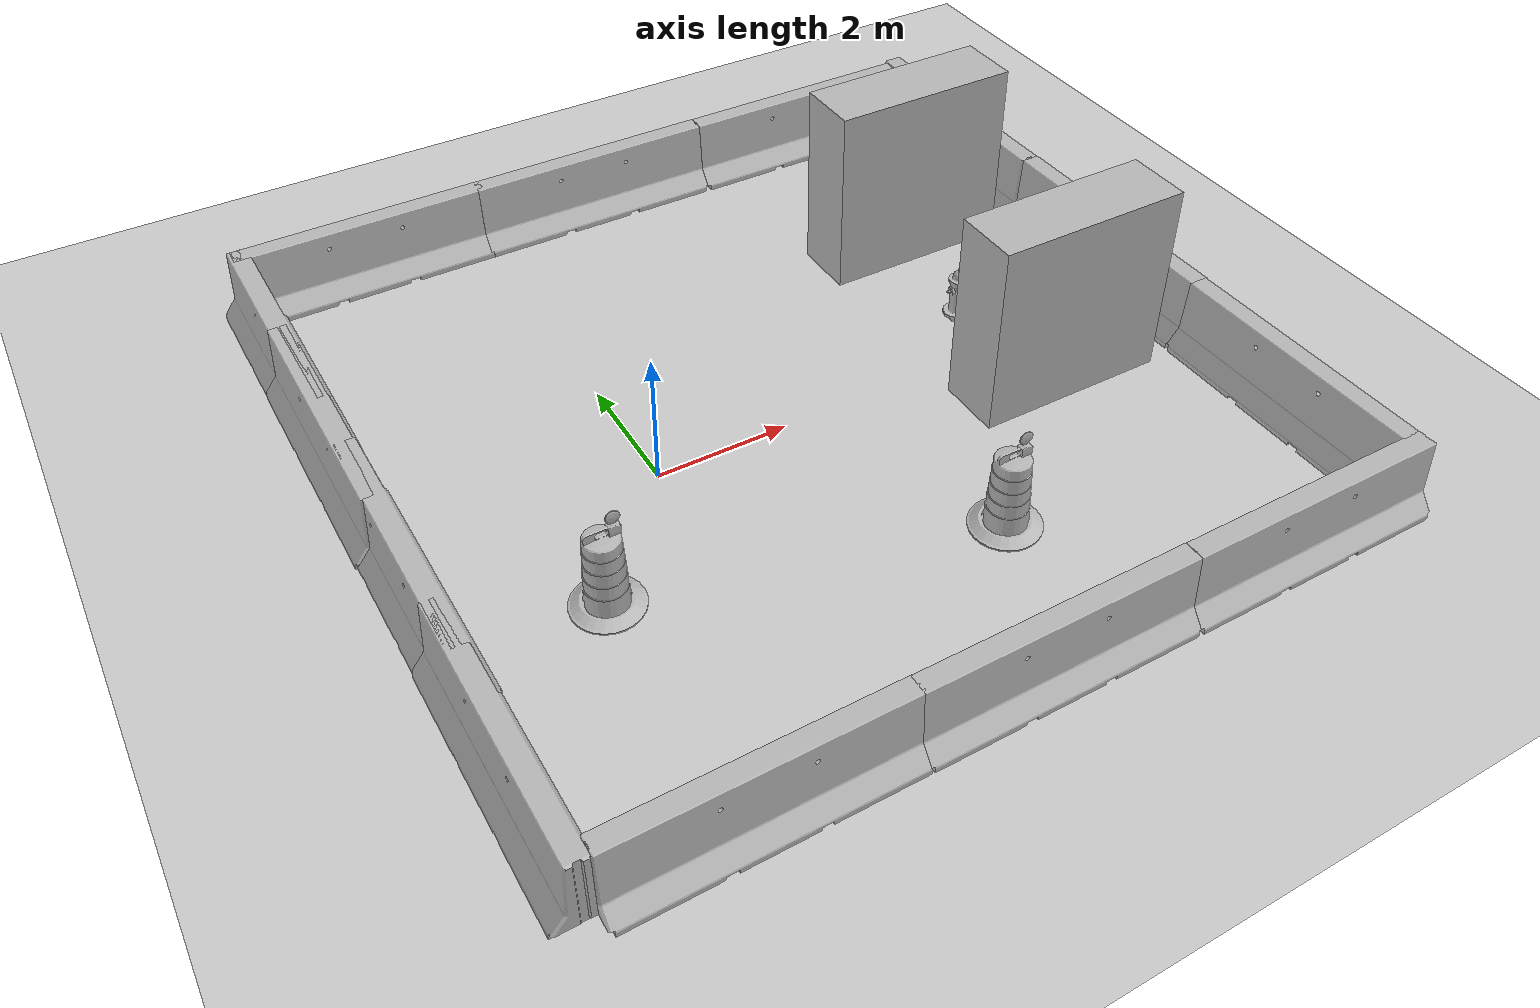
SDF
<sdf version="1.6">
 <world name="default">
  <light name="sun" type="directional">
   <pose>0 0 10 0 -0 0</pose>
   <diffuse>0.8 0.8 0.8 1</diffuse>
   <specular>0.2 0.2 0.2 1</specular>
   <attenuation>
    <range>1000</range>
    <constant>0.9</constant>
    <linear>0.01</linear>
    <quadratic>0.001</quadratic>
   </attenuation>
   <direction>-0.5 0.1 -0.9</direction>
  </light>
  <model name="ground_plane">
   <static>1</static>
   <link name="link">
    <collision name="collision">
     <geometry><plane><normal>0 0 1</normal><size>100 100</size></plane></geometry>
     <surface>
      <contact><collide_bitmask>65535</collide_bitmask></contact>
      <friction><ode><mu>100</mu><mu2>50</mu2></ode></friction>
     </surface>
    </collision>
    <visual name="visual">
     <cast_shadows>0</cast_shadows>
     <geometry><plane><normal>0 0 1</normal><size>100 100</size></plane></geometry>
     <material>
      <script><uri>file://media/materials/scripts/gazebo.material</uri><name>Gazebo/Grey</name></script>
     </material>
    </visual>
   </link>
  </model>
  <gravity>0 0 -9.8</gravity>
  <magnetic_field>6e-06 2.3e-05 -4.2e-05</magnetic_field>
  <atmosphere type="adiabatic"/>
  <physics name="default_physics" default="0" type="ode">
   <max_step_size>0.001</max_step_size>
   <real_time_factor>1</real_time_factor>
   <real_time_update_rate>1000</real_time_update_rate>
  </physics>
  <scene><ambient>0.4 0.4 0.4 1</ambient><background>0.7 0.7 0.7 1</background><shadows>1</shadows></scene>
  <audio><device>default</device></audio>
  <spherical_coordinates>
   <surface_model>EARTH_WGS84</surface_model>
   <latitude_deg>0</latitude_deg>
   <longitude_deg>0</longitude_deg>
   <elevation>0</elevation>
   <heading_deg>0</heading_deg>
  </spherical_coordinates>
  <model name="Construction Barrel">
   <link name="link">
    <inertial>
     <pose>0 0 0.4 0 -0 0</pose>
     <mass>500</mass>
     <inertia><ixx>51.2096</ixx><iyy>51.2096</iyy><izz>25</izz><ixy>0</ixy><ixz>0</ixz><iyz>0</iyz></inertia>
    </inertial>
    <collision name="collision">
     <geometry><mesh><uri>model://construction_barrel/meshes/construction_barrel.dae</uri></mesh></geometry>
    </collision>
    <visual name="visual">
     <geometry><mesh><uri>model://construction_barrel/meshes/construction_barrel.dae</uri></mesh></geometry>
    </visual>
   </link>
   <pose>3.52845 -3.16878 0.021121 3e-06 7e-06 -1e-05</pose>
  </model>
  <model name="fire_hydrant">
   <static>1</static>
   <link name="link">
    <collision name="collision">
     <geometry><mesh><uri>model://fire_hydrant/meshes/fire_hydrant.dae</uri></mesh></geometry>
    </collision>
    <visual name="visual">
     <geometry><mesh><uri>model://fire_hydrant/meshes/fire_hydrant.dae</uri></mesh></geometry>
    </visual>
   </link>
   <pose>5.59717 0.866891 0 0 -0 0</pose>
  </model>
  <model name="Construction Barrel_0">
   <link name="link">
    <inertial>
     <pose>0 0 0.4 0 -0 0</pose>
     <mass>500</mass>
     <inertia><ixx>51.2096</ixx><iyy>51.2096</iyy><izz>25</izz><ixy>0</ixy><ixz>0</ixz><iyz>0</iyz></inertia>
    </inertial>
    <collision name="collision">
     <geometry><mesh><uri>model://construction_barrel/meshes/construction_barrel.dae</uri></mesh></geometry>
    </collision>
    <visual name="visual">
     <geometry><mesh><uri>model://construction_barrel/meshes/construction_barrel.dae</uri></mesh></geometry>
    </visual>
   </link>
   <pose>-1.61049 -1.7673 1.2e-05 -0 4e-06 -7e-06</pose>
  </model>
  <model name="jersey_barrier">
   <static>1</static>
   <link name="link">
    <visual name="visual">
     <geometry><mesh><uri>model://jersey_barrier/meshes/jersey_barrier.dae</uri></mesh></geometry>
    </visual>
    <collision name="upright">
     <pose>0 0 0.5715 0 -0 0</pose>
     <geometry><box><size>4.06542 0.3063 1.143</size></box></geometry>
    </collision>
    <collision name="base">
     <pose>0 0 0.032258 0 -0 0</pose>
     <geometry><box><size>4.06542 0.8107 0.064516</size></box></geometry>
    </collision>
    <collision name="base2">
     <pose>0 0 0.1 0 -0 0</pose>
     <geometry><box><size>4.06542 0.65 0.1</size></box></geometry>
    </collision>
    <collision name="base3">
     <pose>0 0 0.2 0 -0 0</pose>
     <geometry><box><size>4.06542 0.5 0.1</size></box></geometry>
    </collision>
    <collision name="left-angle">
     <pose>0 -0.224 0.2401 0.9 -0 0</pose>
     <geometry><box><size>4.06542 0.5 0.064516</size></box></geometry>
    </collision>
    <collision name="right-angle">
     <pose>0 0.224 0.2401 -0.9 0 0</pose>
     <geometry><box><size>4.06542 0.5 0.064516</size></box></geometry>
    </collision>
   </link>
   <pose>1.99877 6.43412 0 0 -0 0</pose>
  </model>
  <model name="jersey_barrier_0">
   <static>1</static>
   <link name="link">
    <visual name="visual">
     <geometry><mesh><uri>model://jersey_barrier/meshes/jersey_barrier.dae</uri></mesh></geometry>
    </visual>
    <collision name="upright">
     <pose>0 0 0.5715 0 -0 0</pose>
     <geometry><box><size>4.06542 0.3063 1.143</size></box></geometry>
    </collision>
    <collision name="base">
     <pose>0 0 0.032258 0 -0 0</pose>
     <geometry><box><size>4.06542 0.8107 0.064516</size></box></geometry>
    </collision>
    <collision name="base2">
     <pose>0 0 0.1 0 -0 0</pose>
     <geometry><box><size>4.06542 0.65 0.1</size></box></geometry>
    </collision>
    <collision name="base3">
     <pose>0 0 0.2 0 -0 0</pose>
     <geometry><box><size>4.06542 0.5 0.1</size></box></geometry>
    </collision>
    <collision name="left-angle">
     <pose>0 -0.224 0.2401 0.9 -0 0</pose>
     <geometry><box><size>4.06542 0.5 0.064516</size></box></geometry>
    </collision>
    <collision name="right-angle">
     <pose>0 0.224 0.2401 -0.9 0 0</pose>
     <geometry><box><size>4.06542 0.5 0.064516</size></box></geometry>
    </collision>
   </link>
   <pose>6.02508 6.42699 0 0 -0 0</pose>
  </model>
  <model name="jersey_barrier_1">
   <static>1</static>
   <link name="link">
    <visual name="visual">
     <geometry><mesh><uri>model://jersey_barrier/meshes/jersey_barrier.dae</uri></mesh></geometry>
    </visual>
    <collision name="upright">
     <pose>0 0 0.5715 0 -0 0</pose>
     <geometry><box><size>4.06542 0.3063 1.143</size></box></geometry>
    </collision>
    <collision name="base">
     <pose>0 0 0.032258 0 -0 0</pose>
     <geometry><box><size>4.06542 0.8107 0.064516</size></box></geometry>
    </collision>
    <collision name="base2">
     <pose>0 0 0.1 0 -0 0</pose>
     <geometry><box><size>4.06542 0.65 0.1</size></box></geometry>
    </collision>
    <collision name="base3">
     <pose>0 0 0.2 0 -0 0</pose>
     <geometry><box><size>4.06542 0.5 0.1</size></box></geometry>
    </collision>
    <collision name="left-angle">
     <pose>0 -0.224 0.2401 0.9 -0 0</pose>
     <geometry><box><size>4.06542 0.5 0.064516</size></box></geometry>
    </collision>
    <collision name="right-angle">
     <pose>0 0.224 0.2401 -0.9 0 0</pose>
     <geometry><box><size>4.06542 0.5 0.064516</size></box></geometry>
    </collision>
   </link>
   <pose>8.23589 4.64614 0 0 0 -1.56088</pose>
  </model>
  <model name="jersey_barrier_1_clone">
   <static>1</static>
   <link name="link">
    <visual name="visual">
     <geometry><mesh><uri>model://jersey_barrier/meshes/jersey_barrier.dae</uri></mesh></geometry>
    </visual>
    <collision name="upright">
     <pose>0 0 0.5715 0 -0 0</pose>
     <geometry><box><size>4.06542 0.3063 1.143</size></box></geometry>
    </collision>
    <collision name="base">
     <pose>0 0 0.032258 0 -0 0</pose>
     <geometry><box><size>4.06542 0.8107 0.064516</size></box></geometry>
    </collision>
    <collision name="base2">
     <pose>0 0 0.1 0 -0 0</pose>
     <geometry><box><size>4.06542 0.65 0.1</size></box></geometry>
    </collision>
    <collision name="base3">
     <pose>0 0 0.2 0 -0 0</pose>
     <geometry><box><size>4.06542 0.5 0.1</size></box></geometry>
    </collision>
    <collision name="left-angle">
     <pose>0 -0.224 0.2401 0.9 -0 0</pose>
     <geometry><box><size>4.06542 0.5 0.064516</size></box></geometry>
    </collision>
    <collision name="right-angle">
     <pose>0 0.224 0.2401 -0.9 0 0</pose>
     <geometry><box><size>4.06542 0.5 0.064516</size></box></geometry>
    </collision>
   </link>
   <pose>8.28945 0.604837 0 0 0 -1.56088</pose>
  </model>
  <model name="jersey_barrier_1_clone_0">
   <static>1</static>
   <link name="link">
    <visual name="visual">
     <geometry><mesh><uri>model://jersey_barrier/meshes/jersey_barrier.dae</uri></mesh></geometry>
    </visual>
    <collision name="upright">
     <pose>0 0 0.5715 0 -0 0</pose>
     <geometry><box><size>4.06542 0.3063 1.143</size></box></geometry>
    </collision>
    <collision name="base">
     <pose>0 0 0.032258 0 -0 0</pose>
     <geometry><box><size>4.06542 0.8107 0.064516</size></box></geometry>
    </collision>
    <collision name="base2">
     <pose>0 0 0.1 0 -0 0</pose>
     <geometry><box><size>4.06542 0.65 0.1</size></box></geometry>
    </collision>
    <collision name="base3">
     <pose>0 0 0.2 0 -0 0</pose>
     <geometry><box><size>4.06542 0.5 0.1</size></box></geometry>
    </collision>
    <collision name="left-angle">
     <pose>0 -0.224 0.2401 0.9 -0 0</pose>
     <geometry><box><size>4.06542 0.5 0.064516</size></box></geometry>
    </collision>
    <collision name="right-angle">
     <pose>0 0.224 0.2401 -0.9 0 0</pose>
     <geometry><box><size>4.06542 0.5 0.064516</size></box></geometry>
    </collision>
   </link>
   <pose>8.31666 -3.39595 0 0 0 -1.56088</pose>
  </model>
  <model name="jersey_barrier_2">
   <static>1</static>
   <link name="link">
    <visual name="visual">
     <geometry><mesh><uri>model://jersey_barrier/meshes/jersey_barrier.dae</uri></mesh></geometry>
    </visual>
    <collision name="upright">
     <pose>0 0 0.5715 0 -0 0</pose>
     <geometry><box><size>4.06542 0.3063 1.143</size></box></geometry>
    </collision>
    <collision name="base">
     <pose>0 0 0.032258 0 -0 0</pose>
     <geometry><box><size>4.06542 0.8107 0.064516</size></box></geometry>
    </collision>
    <collision name="base2">
     <pose>0 0 0.1 0 -0 0</pose>
     <geometry><box><size>4.06542 0.65 0.1</size></box></geometry>
    </collision>
    <collision name="base3">
     <pose>0 0 0.2 0 -0 0</pose>
     <geometry><box><size>4.06542 0.5 0.1</size></box></geometry>
    </collision>
    <collision name="left-angle">
     <pose>0 -0.224 0.2401 0.9 -0 0</pose>
     <geometry><box><size>4.06542 0.5 0.064516</size></box></geometry>
    </collision>
    <collision name="right-angle">
     <pose>0 0.224 0.2401 -0.9 0 0</pose>
     <geometry><box><size>4.06542 0.5 0.064516</size></box></geometry>
    </collision>
   </link>
   <pose>6.47323 -5.52086 0 0 -0 0</pose>
  </model>
  <model name="jersey_barrier_3">
   <static>1</static>
   <link name="link">
    <visual name="visual">
     <geometry><mesh><uri>model://jersey_barrier/meshes/jersey_barrier.dae</uri></mesh></geometry>
    </visual>
    <collision name="upright">
     <pose>0 0 0.5715 0 -0 0</pose>
     <geometry><box><size>4.06542 0.3063 1.143</size></box></geometry>
    </collision>
    <collision name="base">
     <pose>0 0 0.032258 0 -0 0</pose>
     <geometry><box><size>4.06542 0.8107 0.064516</size></box></geometry>
    </collision>
    <collision name="base2">
     <pose>0 0 0.1 0 -0 0</pose>
     <geometry><box><size>4.06542 0.65 0.1</size></box></geometry>
    </collision>
    <collision name="base3">
     <pose>0 0 0.2 0 -0 0</pose>
     <geometry><box><size>4.06542 0.5 0.1</size></box></geometry>
    </collision>
    <collision name="left-angle">
     <pose>0 -0.224 0.2401 0.9 -0 0</pose>
     <geometry><box><size>4.06542 0.5 0.064516</size></box></geometry>
    </collision>
    <collision name="right-angle">
     <pose>0 0.224 0.2401 -0.9 0 0</pose>
     <geometry><box><size>4.06542 0.5 0.064516</size></box></geometry>
    </collision>
   </link>
   <pose>2.45656 -5.51645 0 0 -0 0</pose>
  </model>
  <model name="jersey_barrier_4">
   <static>1</static>
   <link name="link">
    <visual name="visual">
     <geometry><mesh><uri>model://jersey_barrier/meshes/jersey_barrier.dae</uri></mesh></geometry>
    </visual>
    <collision name="upright">
     <pose>0 0 0.5715 0 -0 0</pose>
     <geometry><box><size>4.06542 0.3063 1.143</size></box></geometry>
    </collision>
    <collision name="base">
     <pose>0 0 0.032258 0 -0 0</pose>
     <geometry><box><size>4.06542 0.8107 0.064516</size></box></geometry>
    </collision>
    <collision name="base2">
     <pose>0 0 0.1 0 -0 0</pose>
     <geometry><box><size>4.06542 0.65 0.1</size></box></geometry>
    </collision>
    <collision name="base3">
     <pose>0 0 0.2 0 -0 0</pose>
     <geometry><box><size>4.06542 0.5 0.1</size></box></geometry>
    </collision>
    <collision name="left-angle">
     <pose>0 -0.224 0.2401 0.9 -0 0</pose>
     <geometry><box><size>4.06542 0.5 0.064516</size></box></geometry>
    </collision>
    <collision name="right-angle">
     <pose>0 0.224 0.2401 -0.9 0 0</pose>
     <geometry><box><size>4.06542 0.5 0.064516</size></box></geometry>
    </collision>
   </link>
   <pose>-1.90964 6.43748 0 0 -0 0</pose>
  </model>
  <model name="jersey_barrier_5">
   <static>1</static>
   <link name="link">
    <visual name="visual">
     <geometry><mesh><uri>model://jersey_barrier/meshes/jersey_barrier.dae</uri></mesh></geometry>
    </visual>
    <collision name="upright">
     <pose>0 0 0.5715 0 -0 0</pose>
     <geometry><box><size>4.06542 0.3063 1.143</size></box></geometry>
    </collision>
    <collision name="base">
     <pose>0 0 0.032258 0 -0 0</pose>
     <geometry><box><size>4.06542 0.8107 0.064516</size></box></geometry>
    </collision>
    <collision name="base2">
     <pose>0 0 0.1 0 -0 0</pose>
     <geometry><box><size>4.06542 0.65 0.1</size></box></geometry>
    </collision>
    <collision name="base3">
     <pose>0 0 0.2 0 -0 0</pose>
     <geometry><box><size>4.06542 0.5 0.1</size></box></geometry>
    </collision>
    <collision name="left-angle">
     <pose>0 -0.224 0.2401 0.9 -0 0</pose>
     <geometry><box><size>4.06542 0.5 0.064516</size></box></geometry>
    </collision>
    <collision name="right-angle">
     <pose>0 0.224 0.2401 -0.9 0 0</pose>
     <geometry><box><size>4.06542 0.5 0.064516</size></box></geometry>
    </collision>
   </link>
   <pose>-1.515 -5.51032 0 0 -0 0</pose>
  </model>
  <model name="jersey_barrier_1_clone_1">
   <static>1</static>
   <link name="link">
    <visual name="visual">
     <geometry><mesh><uri>model://jersey_barrier/meshes/jersey_barrier.dae</uri></mesh></geometry>
    </visual>
    <collision name="upright">
     <pose>0 0 0.5715 0 -0 0</pose>
     <geometry><box><size>4.06542 0.3063 1.143</size></box></geometry>
    </collision>
    <collision name="base">
     <pose>0 0 0.032258 0 -0 0</pose>
     <geometry><box><size>4.06542 0.8107 0.064516</size></box></geometry>
    </collision>
    <collision name="base2">
     <pose>0 0 0.1 0 -0 0</pose>
     <geometry><box><size>4.06542 0.65 0.1</size></box></geometry>
    </collision>
    <collision name="base3">
     <pose>0 0 0.2 0 -0 0</pose>
     <geometry><box><size>4.06542 0.5 0.1</size></box></geometry>
    </collision>
    <collision name="left-angle">
     <pose>0 -0.224 0.2401 0.9 -0 0</pose>
     <geometry><box><size>4.06542 0.5 0.064516</size></box></geometry>
    </collision>
    <collision name="right-angle">
     <pose>0 0.224 0.2401 -0.9 0 0</pose>
     <geometry><box><size>4.06542 0.5 0.064516</size></box></geometry>
    </collision>
   </link>
   <pose>-3.78701 4.5729 0 0 0 -1.56088</pose>
  </model>
  <model name="jersey_barrier_1_clone_2">
   <static>1</static>
   <link name="link">
    <visual name="visual">
     <geometry><mesh><uri>model://jersey_barrier/meshes/jersey_barrier.dae</uri></mesh></geometry>
    </visual>
    <collision name="upright">
     <pose>0 0 0.5715 0 -0 0</pose>
     <geometry><box><size>4.06542 0.3063 1.143</size></box></geometry>
    </collision>
    <collision name="base">
     <pose>0 0 0.032258 0 -0 0</pose>
     <geometry><box><size>4.06542 0.8107 0.064516</size></box></geometry>
    </collision>
    <collision name="base2">
     <pose>0 0 0.1 0 -0 0</pose>
     <geometry><box><size>4.06542 0.65 0.1</size></box></geometry>
    </collision>
    <collision name="base3">
     <pose>0 0 0.2 0 -0 0</pose>
     <geometry><box><size>4.06542 0.5 0.1</size></box></geometry>
    </collision>
    <collision name="left-angle">
     <pose>0 -0.224 0.2401 0.9 -0 0</pose>
     <geometry><box><size>4.06542 0.5 0.064516</size></box></geometry>
    </collision>
    <collision name="right-angle">
     <pose>0 0.224 0.2401 -0.9 0 0</pose>
     <geometry><box><size>4.06542 0.5 0.064516</size></box></geometry>
    </collision>
   </link>
   <pose>-3.70536 -3.61909 0 0 0 -1.56088</pose>
  </model>
  <model name="jersey_barrier_1_clone_3">
   <static>1</static>
   <link name="link">
    <visual name="visual">
     <geometry><mesh><uri>model://jersey_barrier/meshes/jersey_barrier.dae</uri></mesh></geometry>
    </visual>
    <collision name="upright">
     <pose>0 0 0.5715 0 -0 0</pose>
     <geometry><box><size>4.06542 0.3063 1.143</size></box></geometry>
    </collision>
    <collision name="base">
     <pose>0 0 0.032258 0 -0 0</pose>
     <geometry><box><size>4.06542 0.8107 0.064516</size></box></geometry>
    </collision>
    <collision name="base2">
     <pose>0 0 0.1 0 -0 0</pose>
     <geometry><box><size>4.06542 0.65 0.1</size></box></geometry>
    </collision>
    <collision name="base3">
     <pose>0 0 0.2 0 -0 0</pose>
     <geometry><box><size>4.06542 0.5 0.1</size></box></geometry>
    </collision>
    <collision name="left-angle">
     <pose>0 -0.224 0.2401 0.9 -0 0</pose>
     <geometry><box><size>4.06542 0.5 0.064516</size></box></geometry>
    </collision>
    <collision name="right-angle">
     <pose>0 0.224 0.2401 -0.9 0 0</pose>
     <geometry><box><size>4.06542 0.5 0.064516</size></box></geometry>
    </collision>
   </link>
   <pose>-3.7734 2.38203 0 0 0 -1.56088</pose>
  </model>
  <model name="jersey_barrier_1_clone_4">
   <static>1</static>
   <link name="link">
    <visual name="visual">
     <geometry><mesh><uri>model://jersey_barrier/meshes/jersey_barrier.dae</uri></mesh></geometry>
    </visual>
    <collision name="upright">
     <pose>0 0 0.5715 0 -0 0</pose>
     <geometry><box><size>4.06542 0.3063 1.143</size></box></geometry>
    </collision>
    <collision name="base">
     <pose>0 0 0.032258 0 -0 0</pose>
     <geometry><box><size>4.06542 0.8107 0.064516</size></box></geometry>
    </collision>
    <collision name="base2">
     <pose>0 0 0.1 0 -0 0</pose>
     <geometry><box><size>4.06542 0.65 0.1</size></box></geometry>
    </collision>
    <collision name="base3">
     <pose>0 0 0.2 0 -0 0</pose>
     <geometry><box><size>4.06542 0.5 0.1</size></box></geometry>
    </collision>
    <collision name="left-angle">
     <pose>0 -0.224 0.2401 0.9 -0 0</pose>
     <geometry><box><size>4.06542 0.5 0.064516</size></box></geometry>
    </collision>
    <collision name="right-angle">
     <pose>0 0.224 0.2401 -0.9 0 0</pose>
     <geometry><box><size>4.06542 0.5 0.064516</size></box></geometry>
    </collision>
   </link>
   <pose>-3.71896 -0.448429 0 0 0 -1.56088</pose>
  </model>
  <model name="brick_box_3x1x3">
   <static>1</static>
   <link name="chassis">
    <pose>0 0 1.5 0 -0 0</pose>
    <collision name="collision"><geometry><box><size>3 1 3</size></box></geometry></collision>
    <visual name="visual">
     <geometry><mesh><uri>model://brick_box_3x1x3/meshes/simple_box.dae</uri><scale>3 1 3</scale></mesh></geometry>
     <material>
      <script>
       <uri>model://brick_box_3x1x3/materials/scripts</uri>
       <uri>model://brick_box_3x1x3/materials/textures</uri>
       <name>BrickBox/Diffuse</name>
      </script>
     </material>
    </visual>
   </link>
   <pose>6 3 0 0 -0 0</pose>
  </model>
  <model name="brick_box_3x1x3_0">
   <static>1</static>
   <link name="chassis">
    <pose>0 0 1.5 0 -0 0</pose>
    <collision name="collision"><geometry><box><size>3 1 3</size></box></geometry></collision>
    <visual name="visual">
     <geometry><mesh><uri>model://brick_box_3x1x3/meshes/simple_box.dae</uri><scale>3 1 3</scale></mesh></geometry>
     <material>
      <script>
       <uri>model://brick_box_3x1x3/materials/scripts</uri>
       <uri>model://brick_box_3x1x3/materials/textures</uri>
       <name>BrickBox/Diffuse</name>
      </script>
     </material>
    </visual>
   </link>
   <pose>6 -1 0 0 -0 0</pose>
  </model>
 </world>
</sdf>
